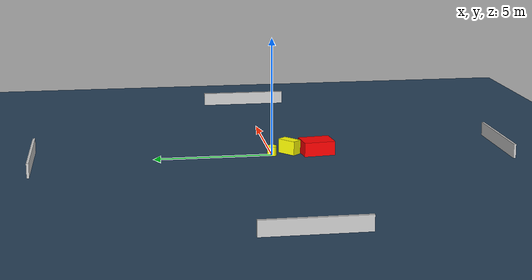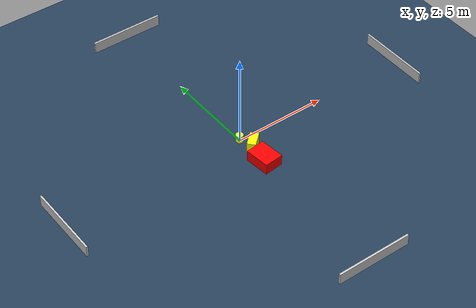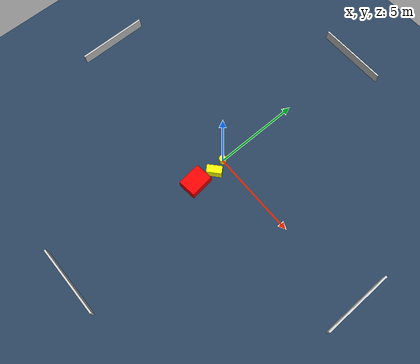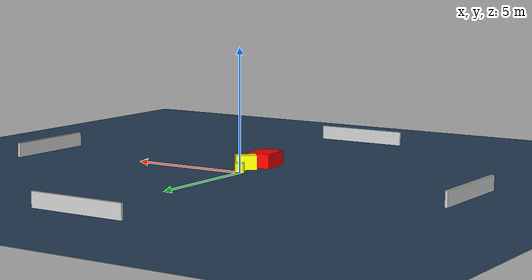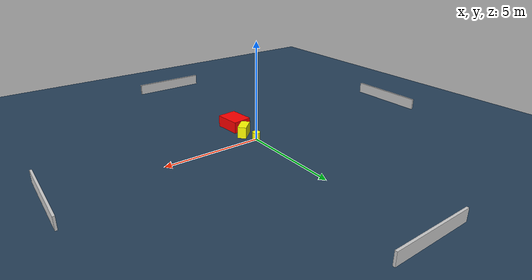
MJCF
<?xml version="1.0" ?>
<mujoco model="generated_environment">
  <option timestep="0.01" integrator="RK4" cone="elliptic"/>
  <default>
    <geom density="1"/>
  </default>
  <asset>
    <texture builtin="gradient" height="3072" name="skybox" rgb1="0.3 0.5 0.7" rgb2="0 0 0" type="skybox" width="512"/>
    <texture builtin="checker" height="300" name="groundplane" rgb1="0.2 0.3 0.4" rgb2="0.1 0.2 0.3" type="2d" width="300"/>
    <material name="groundplane" reflectance="0.2" texrepeat="5 5" texture="groundplane"/>
  </asset>
  <worldbody>
    <light dir="0 0 -1" directional="true" pos="0 0 1.5"/>
    <geom condim="3" friction="0.5 0.005 0.001" material="groundplane" name="floor" pos="0 0 0" size="0 0 0.05" type="plane"/>
    <body name="walls">
      <geom name="wall_1" condim="4" pos="-10.0 0.0 0.3" rgba="0.800000011920929 0.800000011920929 0.800000011920929 1.0" size="0.05 2.0 0.3" type="box"/>
      <geom name="wall_2" condim="4" pos="10.0 0.0 0.3" rgba="0.800000011920929 0.800000011920929 0.800000011920929 1.0" size="0.05 2.0 0.3" type="box"/>
      <geom name="wall_3" condim="4" pos="0.0 -10.0 0.3" rgba="0.800000011920929 0.800000011920929 0.800000011920929 1.0" size="2.0 0.05 0.3" type="box"/>
      <geom name="wall_4" condim="4" pos="0.0 10.0 0.3" rgba="0.800000011920929 0.800000011920929 0.800000011920929 1.0" size="2.0 0.05 0.3" type="box"/>
    </body>
    <body name="robot">
      <joint name="joint_x" type="slide" pos="0 0 0" axis="1 0 0"/>
      <joint name="joint_y" type="slide" pos="0 0 0" axis="0 1 0"/>
      <geom name="robot" type="cylinder" pos="0.0 0.0 0.2" size="0.2 0.2 0.0" mass="5.0" friction="1.0 0.005 0.0001" condim="4" rgba="1.0 1.0 0.0 1.0"/>
    </body>
    <body name="obstacle_1_movable">
      <geom name="obstacle_1_movable" condim="4" pos="0.22364031503877024 -0.7831107261438764 0.3" euler="0 0 311.60131402070533" friction="0.0 0.005 0.001" rgba="1.0 1.0 0.0 1.0" size="0.22132348517676192 0.42195271846481686 0.3" type="box" mass="0.1"/>
      <joint type="free"/>
    </body>
    <body name="obstacle_2_static">
      <geom name="obstacle_2_static" condim="4" pos="0.04566501220039887 -1.9307267381651727 0.3" euler="0 0 96.08803553185733" friction="0.0 0.005 0.001" rgba="1.0 0.0 0.0 1.0" size="0.6703952834493201 0.5107744346318335 0.3" type="box"/>
    </body>
  </worldbody>
  <actuator>
    <motor name="actuator_x" joint="joint_x" gear="1" ctrlrange="-1 1"/>
    <motor name="actuator_y" joint="joint_y" gear="1" ctrlrange="-1 1"/>
  </actuator>
</mujoco>
